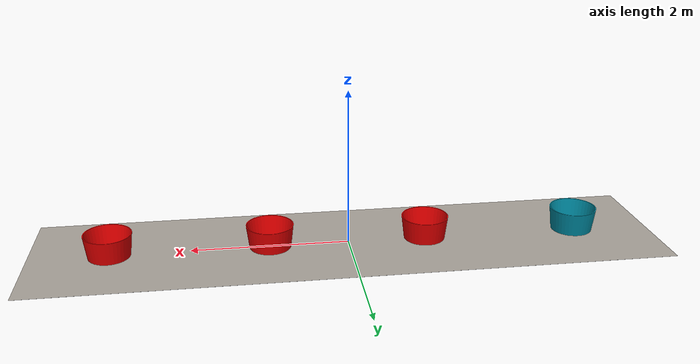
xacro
<?xml version="1.0" encoding="utf-8"?>

<robot name="task2_mat" xmlns:xacro="http://www.ros.org/wiki/xacro">

  <!-- Macros to add tubs onto the mat  -->
  <xacro:macro name="tub_link_red" params="id xyz">
		<link name="tub_${id}">
			<inertial>
			  <origin
				xyz="0 0.1121 0"
				rpy="0 0 0" />
			  <mass
				value="57.465" />
			  <inertia
				ixx="2.4157"
				ixy="-5.5456E-16"
				ixz="6.1062E-16"
				iyy="3.7023"
				iyz="1.205E-15"
				izz="2.4157" />
			</inertial>
			<visual>
			  <origin
				xyz="0 0 0"
				rpy="0 0 0" />
			  <geometry>
				<mesh
				  filename="package://uwv_env/meshes/sauvc_pool/tub.STL" />
			  </geometry>
			  <material
				name="">
				<color
				  rgba="1 0 0 1" />
			  </material>
			</visual>
			<collision>
			  <origin
				xyz="0 0 0"
				rpy="0 0 0" />
			  <geometry>
				<mesh
				  filename="package://uwv_env/meshes/sauvc_pool/tub.STL" />
			  </geometry>
			</collision>
        </link>

        <joint name="tub_${id}_joint" type="fixed">
            <parent link="base_link"/>
            <child link="tub_${id}"/>
            <origin rpy="1.5708 0 0" xyz="${xyz}"/>
        </joint>

        <gazebo reference="tub_${id}">
			<material>
				Gazebo/Red
			</material>
		</gazebo>

    </xacro:macro>

  <xacro:macro name="tub_link_blue" params="id xyz">
		<link name="tub_${id}">
			<inertial>
			  <origin
				xyz="0 0.1121 0"
				rpy="0 0 0" />
			  <mass
				value="57.465" />
			  <inertia
				ixx="2.4157"
				ixy="-5.5456E-16"
				ixz="6.1062E-16"
				iyy="3.7023"
				iyz="1.205E-15"
				izz="2.4157" />
			</inertial>
			<visual>
			  <origin
				xyz="0 0 0"
				rpy="0 0 0" />
			  <geometry>
				<mesh
				  filename="package://uwv_env/meshes/sauvc_pool/tub.STL" />
			  </geometry>
			  <material	name="">
					<color rgba="0 0.6 0.7 1" />
			  </material>
			</visual>
			<collision>
			  <origin
				xyz="0 0 0"
				rpy="0 0 0" />
			  <geometry>
				<mesh
				  filename="package://uwv_env/meshes/sauvc_pool/tub.STL" />
			  </geometry>
			</collision>
        </link>

        <joint name="tub_${id}_joint" type="fixed">
            <parent link="base_link"/>
            <child link="tub_${id}"/>
            <origin rpy="1.5708 0 0" xyz="${xyz}"/>
        </joint>

        <gazebo reference="tub_${id}">
			<material>
				Gazebo/Blue
			</material>
		</gazebo>

    </xacro:macro>

  <link name="base_link">
    <inertial>
      <origin
        xyz="0 0.0005 0"
        rpy="0 0 0" />
      <mass
        value="126.4" />
      <inertia
        ixx="42.133"
        ixy="0"
        ixz="0"
        iyy="716.27"
        iyz="0"
        izz="674.13" />
    </inertial>
    <visual>
      <origin
        xyz="0 0 0"
        rpy="0 0 0" />
      <geometry>
        <mesh
          filename="package://uwv_env/meshes/sauvc_pool/mat.STL" />
      </geometry>
      <material
        name="">
        <color
          rgba="0.64706 0.61961 0.58824 1" />
      </material>
    </visual>
    <collision>
      <origin
        xyz="0 0 0"
        rpy="0 0 0" />
      <geometry>
        <mesh
          filename="package://uwv_env/meshes/sauvc_pool/mat.STL" />
      </geometry>
    </collision>
  </link>

    <gazebo reference="base_link">
		<material>
			Gazebo/Green
		</material>
	</gazebo>

  <xacro:tub_link_blue id="1" xyz="-3 0 0.001"/>
  <xacro:tub_link_red id="2" xyz="-1 0 0.001"/>
  <xacro:tub_link_red id="3" xyz="1 0 0.001"/>
  <xacro:tub_link_red id="4" xyz="3 0 0.001"/>

</robot>
